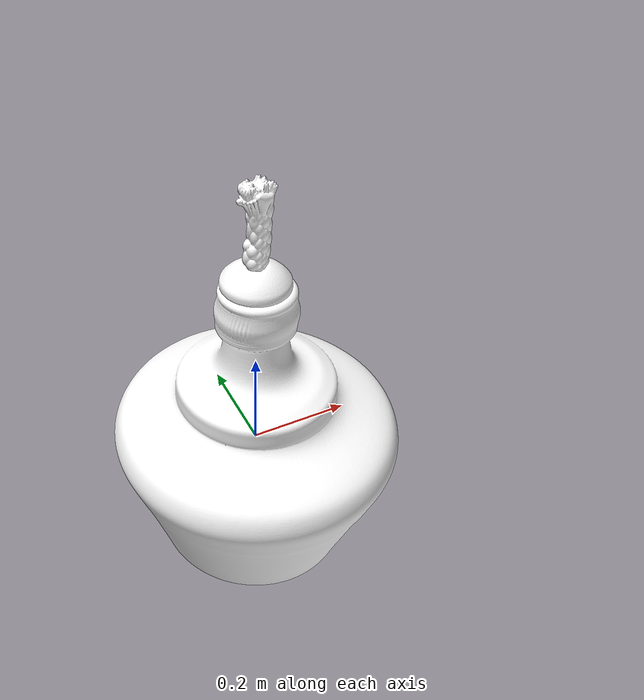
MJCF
<mujoco model="alcohol_lamp">
  <asset>
    <mesh file="alcohol_lamp.obj"/>
  </asset>
  <worldbody>
    <light directional="true" pos="0 0 3" dir="0 0 -1"/>
    <body name="alcohol_lamp" pos="0.0029613290305048946 -0.001302870381238406 -0.2776872340195266">
      <freejoint/>
      <geom mesh="alcohol_lamp" type="mesh" rgba="180 180 180 255"/>
    </body>
  </worldbody>
</mujoco>
